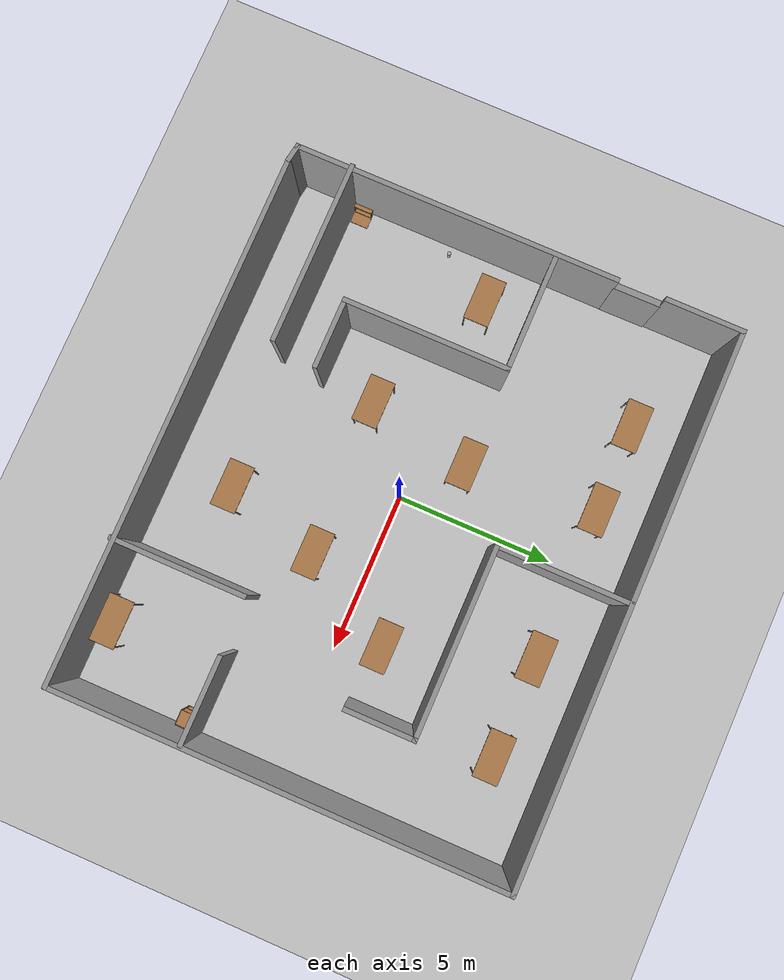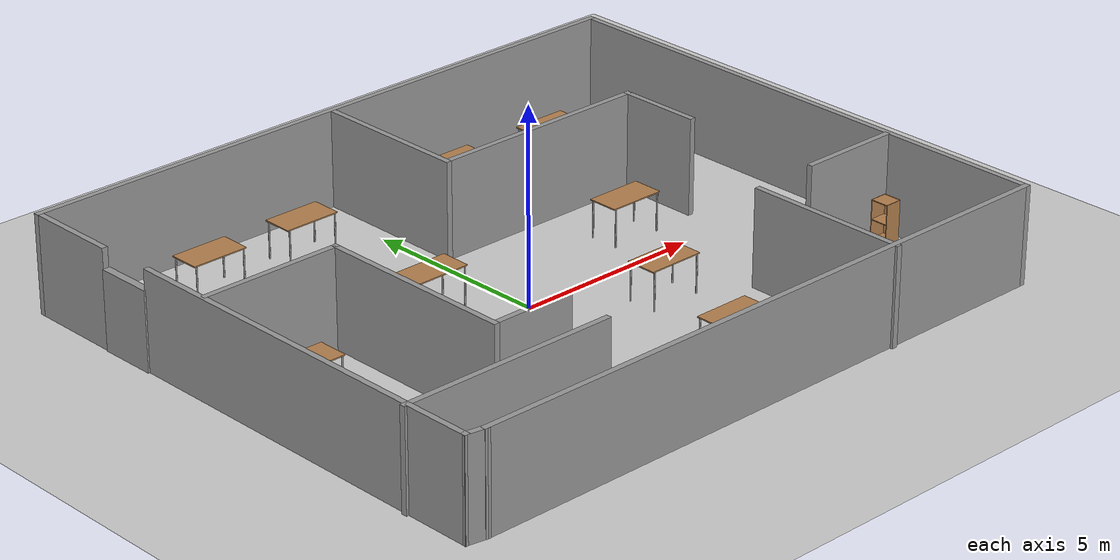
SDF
<sdf version="1.6">
 <world name="default">
  <light name="sun" type="directional">
   <pose>0 0 10 0 -0 0</pose>
   <diffuse>0.8 0.8 0.8 1</diffuse>
   <specular>0.2 0.2 0.2 1</specular>
   <attenuation>
    <range>1000</range>
    <constant>0.9</constant>
    <linear>0.01</linear>
    <quadratic>0.001</quadratic>
   </attenuation>
   <direction>-0.5 0.1 -0.9</direction>
  </light>
  <model name="ground_plane">
   <static>1</static>
   <link name="link">
    <collision name="collision">
     <geometry><plane><normal>0 0 1</normal><size>100 100</size></plane></geometry>
     <surface>
      <contact><collide_bitmask>65535</collide_bitmask></contact>
      <friction><ode><mu>100</mu><mu2>50</mu2></ode></friction>
     </surface>
    </collision>
    <visual name="visual">
     <cast_shadows>0</cast_shadows>
     <geometry><plane><normal>0 0 1</normal><size>100 100</size></plane></geometry>
     <material>
      <script><uri>file://media/materials/scripts/gazebo.material</uri><name>Gazebo/Grey</name></script>
     </material>
    </visual>
   </link>
  </model>
  <gravity>0 0 -9.8</gravity>
  <magnetic_field>6e-06 2.3e-05 -4.2e-05</magnetic_field>
  <atmosphere type="adiabatic"/>
  <physics name="default_physics" default="0" type="ode">
   <max_step_size>0.001</max_step_size>
   <real_time_factor>1</real_time_factor>
   <real_time_update_rate>1000</real_time_update_rate>
  </physics>
  <scene><ambient>0.4 0.4 0.4 1</ambient><background>0.7 0.7 0.7 1</background><shadows>1</shadows></scene>
  <spherical_coordinates>
   <surface_model>EARTH_WGS84</surface_model>
   <latitude_deg>0</latitude_deg>
   <longitude_deg>0</longitude_deg>
   <elevation>0</elevation>
   <heading_deg>0</heading_deg>
  </spherical_coordinates>
  <model name="my_office">
   <pose>0.443231 0.190933 0 0 -0 0</pose>
   <link name="Door_0">
    <collision name="Door_0_Collision">
     <geometry><box><size>1.46806 0.2 2</size></box></geometry>
     <pose>0 0 1 0 -0 0</pose>
    </collision>
    <visual name="Door_0_Visual">
     <pose>0 0 1 0 -0 0</pose>
     <geometry><box><size>1.46806 0.2 2</size></box></geometry>
     <material>
      <script><uri>file://media/materials/scripts/gazebo.material</uri><name>Gazebo/Grey</name></script>
     </material>
    </visual>
    <pose>-8.525 3.93257 0 0 0 -1.56325</pose>
   </link>
   <link name="Wall_10">
    <collision name="Wall_10_Collision">
     <geometry><box><size>10.25 0.15 2.5</size></box></geometry>
     <pose>0 0 1.25 0 -0 0</pose>
    </collision>
    <visual name="Wall_10_Visual">
     <pose>0 0 1.25 0 -0 0</pose>
     <geometry><box><size>10.25 0.15 2.5</size></box></geometry>
     <material>
      <script><uri>file://media/materials/scripts/gazebo.material</uri><name>Gazebo/Grey</name></script>
      <ambient>1 1 1 1</ambient>
     </material>
     <meta><layer>0</layer></meta>
    </visual>
    <pose>-8.50225 -1.88743 0 0 -0 1.5708</pose>
   </link>
   <link name="Wall_14">
    <collision name="Wall_14_Collision">
     <geometry><box><size>0.62569 0.15 2.5</size></box></geometry>
     <pose>0 0 1.25 0 -0 0</pose>
    </collision>
    <visual name="Wall_14_Visual">
     <pose>0 0 1.25 0 -0 0</pose>
     <geometry><box><size>0.62569 0.15 2.5</size></box></geometry>
     <material>
      <script><uri>file://media/materials/scripts/gazebo.material</uri><name>Gazebo/Grey</name></script>
      <ambient>1 1 1 1</ambient>
     </material>
     <meta><layer>0</layer></meta>
    </visual>
    <pose>-8.26774 -6.97711 0 0 -0 2.974</pose>
   </link>
   <link name="Wall_16">
    <collision name="Wall_16_Collision">
     <geometry><box><size>4.25 0.15 2.5</size></box></geometry>
     <pose>0 0 1.25 0 -0 0</pose>
    </collision>
    <visual name="Wall_16_Visual">
     <pose>0 0 1.25 0 -0 0</pose>
     <geometry><box><size>4.25 0.15 2.5</size></box></geometry>
     <material>
      <script><uri>file://media/materials/scripts/gazebo.material</uri><name>Gazebo/Grey</name></script>
      <ambient>1 1 1 1</ambient>
     </material>
     <meta><layer>0</layer></meta>
    </visual>
    <pose>4.08226 -5.03322 0 0 -0 1.5708</pose>
   </link>
   <link name="Wall_19">
    <collision name="Wall_19_Collision">
     <geometry><box><size>2.75 0.15 2.5</size></box></geometry>
     <pose>0 0 1.25 0 -0 0</pose>
    </collision>
    <visual name="Wall_19_Visual">
     <pose>0 0 1.25 0 -0 0</pose>
     <geometry><box><size>2.75 0.15 2.5</size></box></geometry>
     <material>
      <script><uri>file://media/materials/scripts/gazebo.material</uri><name>Gazebo/Grey</name></script>
      <ambient>1 1 1 1</ambient>
     </material>
     <meta><layer>0</layer></meta>
    </visual>
    <pose>7.20694 -2.90579 0 0 -0 3.14159</pose>
   </link>
   <link name="Wall_21">
    <collision name="Wall_21_Collision">
     <geometry><box><size>4.25 0.15 2.5</size></box></geometry>
     <pose>0 0 1.25 0 -0 0</pose>
    </collision>
    <visual name="Wall_21_Visual">
     <pose>0 0 1.25 0 -0 0</pose>
     <geometry><box><size>4.25 0.15 2.5</size></box></geometry>
     <material>
      <script><uri>file://media/materials/scripts/gazebo.material</uri><name>Gazebo/Grey</name></script>
      <ambient>1 1 1 1</ambient>
     </material>
     <meta><layer>0</layer></meta>
    </visual>
    <pose>-0.034669 5.03298 0 0 0 -1.5708</pose>
   </link>
   <link name="Wall_22">
    <collision name="Wall_22_Collision">
     <geometry><box><size>6 0.15 2.5</size></box></geometry>
     <pose>0 0 1.25 0 -0 0</pose>
    </collision>
    <visual name="Wall_22_Visual">
     <pose>0 0 1.25 0 -0 0</pose>
     <geometry><box><size>6 0.15 2.5</size></box></geometry>
     <material>
      <script><uri>file://media/materials/scripts/gazebo.material</uri><name>Gazebo/Grey</name></script>
      <ambient>1 1 1 1</ambient>
     </material>
     <meta><layer>0</layer></meta>
    </visual>
    <pose>2.89033 2.98298 0 0 -0 0</pose>
   </link>
   <link name="Wall_23">
    <collision name="Wall_23_Collision">
     <geometry><box><size>2.25 0.15 2.5</size></box></geometry>
     <pose>0 0 1.25 0 -0 0</pose>
    </collision>
    <visual name="Wall_23_Visual">
     <pose>0 0 1.25 0 -0 0</pose>
     <geometry><box><size>2.25 0.15 2.5</size></box></geometry>
     <material>
      <script><uri>file://media/materials/scripts/gazebo.material</uri><name>Gazebo/Grey</name></script>
      <ambient>1 1 1 1</ambient>
     </material>
     <meta><layer>0</layer></meta>
    </visual>
    <pose>5.81533 1.93298 0 0 0 -1.5708</pose>
   </link>
   <link name="Wall_25">
    <collision name="Wall_25_Collision">
     <geometry><box><size>3.75 0.15 2.5</size></box></geometry>
     <pose>0 0 1.25 0 -0 0</pose>
    </collision>
    <visual name="Wall_25_Visual">
     <pose>0 0 1.25 0 -0 0</pose>
     <geometry><box><size>3.75 0.15 2.5</size></box></geometry>
     <material>
      <script><uri>file://media/materials/scripts/gazebo.material</uri><name>Gazebo/Grey</name></script>
      <ambient>1 1 1 1</ambient>
     </material>
     <meta><layer>0</layer></meta>
    </visual>
    <pose>-6.6299 1.28845 0 0 -0 0</pose>
   </link>
   <link name="Wall_26">
    <collision name="Wall_26_Collision">
     <geometry><box><size>5.25 0.15 2.5</size></box></geometry>
     <pose>0 0 1.25 0 -0 0</pose>
    </collision>
    <visual name="Wall_26_Visual">
     <pose>0 0 1.25 0 -0 0</pose>
     <geometry><box><size>5.25 0.15 2.5</size></box></geometry>
     <material>
      <script><uri>file://media/materials/scripts/gazebo.material</uri><name>Gazebo/Grey</name></script>
      <ambient>1 1 1 1</ambient>
     </material>
     <meta><layer>0</layer></meta>
    </visual>
    <pose>-4.8299 -1.26155 0 0 0 -1.5708</pose>
   </link>
   <link name="Wall_27">
    <collision name="Wall_27_Collision">
     <geometry><box><size>2.25 0.15 2.5</size></box></geometry>
     <pose>0 0 1.25 0 -0 0</pose>
    </collision>
    <visual name="Wall_27_Visual">
     <pose>0 0 1.25 0 -0 0</pose>
     <geometry><box><size>2.25 0.15 2.5</size></box></geometry>
     <material>
      <script><uri>file://media/materials/scripts/gazebo.material</uri><name>Gazebo/Grey</name></script>
      <ambient>1 1 1 1</ambient>
     </material>
     <meta><layer>0</layer></meta>
    </visual>
    <pose>-3.7799 -3.81155 0 0 -0 0</pose>
   </link>
   <link name="Wall_3">
    <collision name="Wall_3_Collision">
     <geometry><box><size>16.75 0.15 2.5</size></box></geometry>
     <pose>0 0 1.25 0 -0 0</pose>
    </collision>
    <visual name="Wall_3_Visual">
     <pose>0 0 1.25 0 -0 0</pose>
     <geometry><box><size>16.75 0.15 2.5</size></box></geometry>
     <material>
      <script><uri>file://media/materials/scripts/gazebo.material</uri><name>Gazebo/Grey</name></script>
      <ambient>1 1 1 1</ambient>
     </material>
     <meta><layer>0</layer></meta>
    </visual>
    <pose>0.266777 -7.01678 0 0 -0 0</pose>
   </link>
   <link name="Wall_31">
    <collision name="Wall_31_Collision">
     <geometry><box><size>5.75 0.15 2.5</size></box></geometry>
     <pose>0 0 1.25 0 -0 0</pose>
    </collision>
    <visual name="Wall_31_Visual">
     <pose>0 0 1.25 0 -0 0</pose>
     <geometry><box><size>5.75 0.15 2.5</size></box></geometry>
     <material>
      <script><uri>file://media/materials/scripts/gazebo.material</uri><name>Gazebo/Grey</name></script>
      <ambient>1 1 1 1</ambient>
     </material>
     <meta><layer>0</layer></meta>
    </visual>
    <pose>-5.76678 -5.2361 0 0 -0 0</pose>
   </link>
   <link name="Wall_4">
    <collision name="Wall_4_Collision">
     <geometry><box><size>14.25 0.15 2.5</size></box></geometry>
     <pose>0 0 1.25 0 -0 0</pose>
    </collision>
    <visual name="Wall_4_Visual">
     <pose>0 0 1.25 0 -0 0</pose>
     <geometry><box><size>14.25 0.15 2.5</size></box></geometry>
     <material>
      <script><uri>file://media/materials/scripts/gazebo.material</uri><name>Gazebo/Grey</name></script>
      <ambient>1 1 1 1</ambient>
     </material>
     <meta><layer>0</layer></meta>
    </visual>
    <pose>8.56678 0.033215 0 0 -0 1.5708</pose>
   </link>
   <link name="Wall_5">
    <collision name="Wall_5_Collision">
     <geometry><box><size>17.25 0.15 2.5</size></box></geometry>
     <pose>0 0 1.25 0 -0 0</pose>
    </collision>
    <visual name="Wall_5_Visual">
     <pose>0 0 1.25 0 -0 0</pose>
     <geometry><box><size>17.25 0.15 2.5</size></box></geometry>
     <material>
      <script><uri>file://media/materials/scripts/gazebo.material</uri><name>Gazebo/Grey</name></script>
      <ambient>1 1 1 1</ambient>
     </material>
     <meta><layer>0</layer></meta>
    </visual>
    <pose>0.016777 7.08322 0 0 -0 3.14159</pose>
   </link>
   <link name="Wall_6">
    <collision name="Wall_6_Collision">
     <geometry><box><size>2.5 0.15 2.5</size></box></geometry>
     <pose>0 0 1.25 0 -0 0</pose>
    </collision>
    <visual name="Wall_6_Visual">
     <pose>0 0 1.25 0 -0 0</pose>
     <geometry><box><size>2.5 0.15 2.5</size></box></geometry>
     <material>
      <script><uri>file://media/materials/scripts/gazebo.material</uri><name>Gazebo/Grey</name></script>
      <ambient>1 1 1 1</ambient>
     </material>
     <meta><layer>0</layer></meta>
    </visual>
    <pose>-8.53322 5.90822 0 0 0 -1.5708</pose>
   </link>
   <static>1</static>
  </model>
  <model name="cabinet">
   <static>1</static>
   <link name="cabinet_bottom_plate">
    <inertial>
     <pose>0 0 -1 0 -0 0</pose>
     <inertia><ixx>2.05</ixx><ixy>0</ixy><ixz>0</ixz><iyy>2.05</iyy><iyz>0</iyz><izz>2.05</izz></inertia>
     <mass>25</mass>
    </inertial>
    <collision name="cabinet_bottom_plate_geom">
     <pose>0 0 0.01 0 -0 0</pose>
     <geometry><box><size>0.45 0.45 0.02</size></box></geometry>
    </collision>
    <visual name="cabinet_bottom_plate_geom_visual">
     <pose>0 0 0.01 0 -0 0</pose>
     <geometry><box><size>0.45 0.45 0.02</size></box></geometry>
     <material>
      <script><uri>file://media/materials/scripts/gazebo.material</uri><name>Gazebo/Wood</name></script>
     </material>
    </visual>
    <collision name="cabinet_bottom_plate_geom_cabinet_back_plate">
     <pose>0.235 0 0.51 0 -0 0</pose>
     <geometry><box><size>0.02 0.45 1.02</size></box></geometry>
    </collision>
    <visual name="cabinet_bottom_plate_geom_cabinet_back_plate_visual">
     <pose>0.235 0 0.51 0 -0 0</pose>
     <geometry><box><size>0.02 0.45 1.02</size></box></geometry>
     <material>
      <script><uri>file://media/materials/scripts/gazebo.material</uri><name>Gazebo/Wood</name></script>
     </material>
    </visual>
    <collision name="cabinet_bottom_plate_geom_cabinet_left_plate">
     <pose>0 0.235 0.51 0 -0 0</pose>
     <geometry><box><size>0.45 0.02 1.02</size></box></geometry>
    </collision>
    <visual name="cabinet_bottom_plate_geom_cabinet_left_plate_visual">
     <pose>0 0.235 0.51 0 -0 0</pose>
     <geometry><box><size>0.45 0.02 1.02</size></box></geometry>
     <material>
      <script><uri>file://media/materials/scripts/gazebo.material</uri><name>Gazebo/Wood</name></script>
     </material>
    </visual>
    <collision name="cabinet_bottom_plate_geom_cabinet_middle_plate">
     <pose>0 0 0.51 0 -0 0</pose>
     <geometry><box><size>0.45 0.45 0.02</size></box></geometry>
    </collision>
    <visual name="cabinet_bottom_plate_geom_cabinet_middle_plate_visual">
     <pose>0 0 0.51 0 -0 0</pose>
     <geometry><box><size>0.45 0.45 0.02</size></box></geometry>
     <material>
      <script><uri>file://media/materials/scripts/gazebo.material</uri><name>Gazebo/Wood</name></script>
     </material>
    </visual>
    <collision name="cabinet_bottom_plate_geom_cabinet_right_plate">
     <pose>0 -0.235 0.51 0 -0 0</pose>
     <geometry><box><size>0.45 0.02 1.02</size></box></geometry>
    </collision>
    <visual name="cabinet_bottom_plate_geom_cabinet_right_plate_visual">
     <pose>0 -0.235 0.51 0 -0 0</pose>
     <geometry><box><size>0.45 0.02 1.02</size></box></geometry>
     <material>
      <script><uri>file://media/materials/scripts/gazebo.material</uri><name>Gazebo/Wood</name></script>
     </material>
    </visual>
    <collision name="cabinet_bottom_plate_geom_cabinet_top_plate">
     <pose>0 0 1.01 0 -0 0</pose>
     <geometry><box><size>0.45 0.45 0.02</size></box></geometry>
    </collision>
    <visual name="cabinet_bottom_plate_geom_cabinet_top_plate_visual">
     <pose>0 0 1.01 0 -0 0</pose>
     <geometry><box><size>0.45 0.45 0.02</size></box></geometry>
     <material>
      <script><uri>file://media/materials/scripts/gazebo.material</uri><name>Gazebo/Wood</name></script>
     </material>
    </visual>
   </link>
   <pose>8.58414 -3.09068 0 0 -0 0</pose>
  </model>
  <model name="table">
   <static>1</static>
   <link name="link">
    <collision name="surface">
     <pose>0 0 1 0 -0 0</pose>
     <geometry><box><size>1.5 0.8 0.03</size></box></geometry>
     <surface><friction><ode><mu>0.6</mu><mu2>0.6</mu2></ode></friction></surface>
    </collision>
    <visual name="visual1">
     <pose>0 0 1 0 -0 0</pose>
     <geometry><box><size>1.5 0.8 0.03</size></box></geometry>
     <material>
      <script><uri>file://media/materials/scripts/gazebo.material</uri><name>Gazebo/Wood</name></script>
     </material>
    </visual>
    <collision name="front_left_leg">
     <pose>0.68 0.38 0.5 0 -0 0</pose>
     <geometry><cylinder><radius>0.02</radius><length>1</length></cylinder></geometry>
    </collision>
    <visual name="front_left_leg">
     <pose>0.68 0.38 0.5 0 -0 0</pose>
     <geometry><cylinder><radius>0.02</radius><length>1</length></cylinder></geometry>
     <material>
      <script><uri>file://media/materials/scripts/gazebo.material</uri><name>Gazebo/Grey</name></script>
     </material>
    </visual>
    <collision name="front_right_leg">
     <pose>0.68 -0.38 0.5 0 -0 0</pose>
     <geometry><cylinder><radius>0.02</radius><length>1</length></cylinder></geometry>
    </collision>
    <visual name="front_right_leg">
     <pose>0.68 -0.38 0.5 0 -0 0</pose>
     <geometry><cylinder><radius>0.02</radius><length>1</length></cylinder></geometry>
     <material>
      <script><uri>file://media/materials/scripts/gazebo.material</uri><name>Gazebo/Grey</name></script>
     </material>
    </visual>
    <collision name="back_right_leg">
     <pose>-0.68 -0.38 0.5 0 -0 0</pose>
     <geometry><cylinder><radius>0.02</radius><length>1</length></cylinder></geometry>
    </collision>
    <visual name="back_right_leg">
     <pose>-0.68 -0.38 0.5 0 -0 0</pose>
     <geometry><cylinder><radius>0.02</radius><length>1</length></cylinder></geometry>
     <material>
      <script><uri>file://media/materials/scripts/gazebo.material</uri><name>Gazebo/Grey</name></script>
     </material>
    </visual>
    <collision name="back_left_leg">
     <pose>-0.68 0.38 0.5 0 -0 0</pose>
     <geometry><cylinder><radius>0.02</radius><length>1</length></cylinder></geometry>
    </collision>
    <visual name="back_left_leg">
     <pose>-0.68 0.38 0.5 0 -0 0</pose>
     <geometry><cylinder><radius>0.02</radius><length>1</length></cylinder></geometry>
     <material>
      <script><uri>file://media/materials/scripts/gazebo.material</uri><name>Gazebo/Grey</name></script>
     </material>
    </visual>
   </link>
   <pose>6.83722 -6.28916 0 0 -0 0</pose>
  </model>
  <model name="table_0">
   <static>1</static>
   <link name="link">
    <collision name="surface">
     <pose>0 0 1 0 -0 0</pose>
     <geometry><box><size>1.5 0.8 0.03</size></box></geometry>
     <surface><friction><ode><mu>0.6</mu><mu2>0.6</mu2></ode></friction></surface>
    </collision>
    <visual name="visual1">
     <pose>0 0 1 0 -0 0</pose>
     <geometry><box><size>1.5 0.8 0.03</size></box></geometry>
     <material>
      <script><uri>file://media/materials/scripts/gazebo.material</uri><name>Gazebo/Wood</name></script>
     </material>
    </visual>
    <collision name="front_left_leg">
     <pose>0.68 0.38 0.5 0 -0 0</pose>
     <geometry><cylinder><radius>0.02</radius><length>1</length></cylinder></geometry>
    </collision>
    <visual name="front_left_leg">
     <pose>0.68 0.38 0.5 0 -0 0</pose>
     <geometry><cylinder><radius>0.02</radius><length>1</length></cylinder></geometry>
     <material>
      <script><uri>file://media/materials/scripts/gazebo.material</uri><name>Gazebo/Grey</name></script>
     </material>
    </visual>
    <collision name="front_right_leg">
     <pose>0.68 -0.38 0.5 0 -0 0</pose>
     <geometry><cylinder><radius>0.02</radius><length>1</length></cylinder></geometry>
    </collision>
    <visual name="front_right_leg">
     <pose>0.68 -0.38 0.5 0 -0 0</pose>
     <geometry><cylinder><radius>0.02</radius><length>1</length></cylinder></geometry>
     <material>
      <script><uri>file://media/materials/scripts/gazebo.material</uri><name>Gazebo/Grey</name></script>
     </material>
    </visual>
    <collision name="back_right_leg">
     <pose>-0.68 -0.38 0.5 0 -0 0</pose>
     <geometry><cylinder><radius>0.02</radius><length>1</length></cylinder></geometry>
    </collision>
    <visual name="back_right_leg">
     <pose>-0.68 -0.38 0.5 0 -0 0</pose>
     <geometry><cylinder><radius>0.02</radius><length>1</length></cylinder></geometry>
     <material>
      <script><uri>file://media/materials/scripts/gazebo.material</uri><name>Gazebo/Grey</name></script>
     </material>
    </visual>
    <collision name="back_left_leg">
     <pose>-0.68 0.38 0.5 0 -0 0</pose>
     <geometry><cylinder><radius>0.02</radius><length>1</length></cylinder></geometry>
    </collision>
    <visual name="back_left_leg">
     <pose>-0.68 0.38 0.5 0 -0 0</pose>
     <geometry><cylinder><radius>0.02</radius><length>1</length></cylinder></geometry>
     <material>
      <script><uri>file://media/materials/scripts/gazebo.material</uri><name>Gazebo/Grey</name></script>
     </material>
    </visual>
   </link>
   <pose>2.87174 5.62538 0 0 -0 0</pose>
  </model>
  <model name="table_1">
   <static>1</static>
   <link name="link">
    <collision name="surface">
     <pose>0 0 1 0 -0 0</pose>
     <geometry><box><size>1.5 0.8 0.03</size></box></geometry>
     <surface><friction><ode><mu>0.6</mu><mu2>0.6</mu2></ode></friction></surface>
    </collision>
    <visual name="visual1">
     <pose>0 0 1 0 -0 0</pose>
     <geometry><box><size>1.5 0.8 0.03</size></box></geometry>
     <material>
      <script><uri>file://media/materials/scripts/gazebo.material</uri><name>Gazebo/Wood</name></script>
     </material>
    </visual>
    <collision name="front_left_leg">
     <pose>0.68 0.38 0.5 0 -0 0</pose>
     <geometry><cylinder><radius>0.02</radius><length>1</length></cylinder></geometry>
    </collision>
    <visual name="front_left_leg">
     <pose>0.68 0.38 0.5 0 -0 0</pose>
     <geometry><cylinder><radius>0.02</radius><length>1</length></cylinder></geometry>
     <material>
      <script><uri>file://media/materials/scripts/gazebo.material</uri><name>Gazebo/Grey</name></script>
     </material>
    </visual>
    <collision name="front_right_leg">
     <pose>0.68 -0.38 0.5 0 -0 0</pose>
     <geometry><cylinder><radius>0.02</radius><length>1</length></cylinder></geometry>
    </collision>
    <visual name="front_right_leg">
     <pose>0.68 -0.38 0.5 0 -0 0</pose>
     <geometry><cylinder><radius>0.02</radius><length>1</length></cylinder></geometry>
     <material>
      <script><uri>file://media/materials/scripts/gazebo.material</uri><name>Gazebo/Grey</name></script>
     </material>
    </visual>
    <collision name="back_right_leg">
     <pose>-0.68 -0.38 0.5 0 -0 0</pose>
     <geometry><cylinder><radius>0.02</radius><length>1</length></cylinder></geometry>
    </collision>
    <visual name="back_right_leg">
     <pose>-0.68 -0.38 0.5 0 -0 0</pose>
     <geometry><cylinder><radius>0.02</radius><length>1</length></cylinder></geometry>
     <material>
      <script><uri>file://media/materials/scripts/gazebo.material</uri><name>Gazebo/Grey</name></script>
     </material>
    </visual>
    <collision name="back_left_leg">
     <pose>-0.68 0.38 0.5 0 -0 0</pose>
     <geometry><cylinder><radius>0.02</radius><length>1</length></cylinder></geometry>
    </collision>
    <visual name="back_left_leg">
     <pose>-0.68 0.38 0.5 0 -0 0</pose>
     <geometry><cylinder><radius>0.02</radius><length>1</length></cylinder></geometry>
     <material>
      <script><uri>file://media/materials/scripts/gazebo.material</uri><name>Gazebo/Grey</name></script>
     </material>
    </visual>
   </link>
   <pose>5.97469 5.5953 0 0 -0 0</pose>
  </model>
  <model name="wooden_case">
   <link name="base">
    <pose>0 0 0.024 0 -0 0</pose>
    <inertial>
     <pose>-0.022184 0 0.171592 0 -0 0</pose>
     <mass>3.96264</mass>
     <inertia>
      <ixx>0.213536</ixx>
      <ixy>0</ixy>
      <ixz>0.000779377</ixz>
      <iyy>0.0708943</iyy>
      <iyz>0</iyz>
      <izz>0.154604</izz>
     </inertia>
    </inertial>
    <collision name="collision_back">
     <pose>-0.053975 0 0.1778 0 -0 0</pose>
     <geometry><box><size>0.01905 0.5461 0.3175</size></box></geometry>
     <surface>
      <contact>
       <poissons_ratio>0.347</poissons_ratio>
       <elastic_modulus>8.8e+09</elastic_modulus>
       <ode><kp>100000</kp><kd>100</kd><max_vel>100</max_vel><min_depth>0.001</min_depth></ode>
      </contact>
      <friction>
       <torsional>
        <coefficient>1</coefficient>
        <use_patch_radius>0</use_patch_radius>
        <surface_radius>0.01</surface_radius>
       </torsional>
      </friction>
     </surface>
    </collision>
    <visual name="visual_back">
     <pose>-0.053975 0 0.1778 0 -0 0</pose>
     <geometry><box><size>0.01905 0.5461 0.3175</size></box></geometry>
     <material>
      <script><uri>file://media/materials/scripts/gazebo.material</uri><name>Gazebo/Wood</name></script>
     </material>
    </visual>
    <collision name="collision_bottom">
     <pose>0 0 0.009525 0 -0 0</pose>
     <geometry><box><size>0.127 0.5842 0.01905</size></box></geometry>
     <surface>
      <contact>
       <poissons_ratio>0.347</poissons_ratio>
       <elastic_modulus>8.8e+09</elastic_modulus>
       <ode><kp>100000</kp><kd>100</kd><max_vel>100</max_vel><min_depth>0.001</min_depth></ode>
      </contact>
      <friction>
       <torsional>
        <coefficient>1</coefficient>
        <use_patch_radius>0</use_patch_radius>
        <surface_radius>0.01</surface_radius>
       </torsional>
      </friction>
     </surface>
    </collision>
    <visual name="visual_bottom">
     <pose>0 0 0.009525 0 -0 0</pose>
     <geometry><box><size>0.127 0.5842 0.01905</size></box></geometry>
     <material>
      <script><uri>file://media/materials/scripts/gazebo.material</uri><name>Gazebo/Wood</name></script>
     </material>
    </visual>
    <collision name="collision_top">
     <pose>0 0 0.346075 0 -0 0</pose>
     <geometry><box><size>0.127 0.5842 0.01905</size></box></geometry>
     <surface>
      <contact>
       <poissons_ratio>0.347</poissons_ratio>
       <elastic_modulus>8.8e+09</elastic_modulus>
       <ode><kp>100000</kp><kd>100</kd><max_vel>100</max_vel><min_depth>0.001</min_depth></ode>
      </contact>
      <friction>
       <torsional>
        <coefficient>1</coefficient>
        <use_patch_radius>0</use_patch_radius>
        <surface_radius>0.01</surface_radius>
       </torsional>
      </friction>
     </surface>
    </collision>
    <visual name="visual_top">
     <pose>0 0 0.346075 0 -0 0</pose>
     <geometry><box><size>0.127 0.5842 0.01905</size></box></geometry>
     <material>
      <script><uri>file://media/materials/scripts/gazebo.material</uri><name>Gazebo/Wood</name></script>
     </material>
    </visual>
    <collision name="collision_left">
     <pose>0 -0.282575 0.1778 0 -0 0</pose>
     <geometry><box><size>0.127 0.01905 0.3175</size></box></geometry>
     <surface>
      <contact>
       <poissons_ratio>0.347</poissons_ratio>
       <elastic_modulus>8.8e+09</elastic_modulus>
       <ode><kp>100000</kp><kd>100</kd><max_vel>100</max_vel><min_depth>0.001</min_depth></ode>
      </contact>
      <friction>
       <torsional>
        <coefficient>1</coefficient>
        <use_patch_radius>0</use_patch_radius>
        <surface_radius>0.01</surface_radius>
       </torsional>
      </friction>
     </surface>
    </collision>
    <visual name="visual_left">
     <pose>0 -0.282575 0.1778 0 -0 0</pose>
     <geometry><box><size>0.127 0.01905 0.3175</size></box></geometry>
     <material>
      <script><uri>file://media/materials/scripts/gazebo.material</uri><name>Gazebo/Wood</name></script>
     </material>
    </visual>
    <collision name="collision_right">
     <pose>0 0.282575 0.1778 0 -0 0</pose>
     <geometry><box><size>0.127 0.01905 0.3175</size></box></geometry>
     <surface>
      <contact>
       <poissons_ratio>0.347</poissons_ratio>
       <elastic_modulus>8.8e+09</elastic_modulus>
       <ode><kp>100000</kp><kd>100</kd><max_vel>100</max_vel><min_depth>0.001</min_depth></ode>
      </contact>
      <friction>
       <torsional>
        <coefficient>1</coefficient>
        <use_patch_radius>0</use_patch_radius>
        <surface_radius>0.01</surface_radius>
       </torsional>
      </friction>
     </surface>
    </collision>
    <visual name="visual_right">
     <pose>0 0.282575 0.1778 0 -0 0</pose>
     <geometry><box><size>0.127 0.01905 0.3175</size></box></geometry>
     <material>
      <script><uri>file://media/materials/scripts/gazebo.material</uri><name>Gazebo/Wood</name></script>
     </material>
    </visual>
    <collision name="collision_block_left">
     <pose>0.0095 -0.2151 -0.012 0 -0 0</pose>
     <geometry><box><size>0.108 0.05 0.024</size></box></geometry>
     <surface>
      <contact>
       <poissons_ratio>0.347</poissons_ratio>
       <elastic_modulus>8.8e+09</elastic_modulus>
       <ode><kp>100000</kp><kd>100</kd><max_vel>100</max_vel><min_depth>0.001</min_depth></ode>
      </contact>
      <friction>
       <torsional>
        <coefficient>1</coefficient>
        <use_patch_radius>0</use_patch_radius>
        <surface_radius>0.01</surface_radius>
       </torsional>
      </friction>
     </surface>
    </collision>
    <visual name="visual_block_left">
     <pose>0.0095 -0.2151 -0.012 0 -0 0</pose>
     <geometry><box><size>0.108 0.05 0.024</size></box></geometry>
     <material>
      <script><uri>file://media/materials/scripts/gazebo.material</uri><name>Gazebo/Wood</name></script>
     </material>
    </visual>
    <collision name="collision_block_right">
     <pose>0.0095 0.2151 -0.012 0 -0 0</pose>
     <geometry><box><size>0.108 0.05 0.024</size></box></geometry>
     <surface>
      <contact>
       <poissons_ratio>0.347</poissons_ratio>
       <elastic_modulus>8.8e+09</elastic_modulus>
       <ode><kp>100000</kp><kd>100</kd><max_vel>100</max_vel><min_depth>0.001</min_depth></ode>
      </contact>
      <friction>
       <torsional>
        <coefficient>1</coefficient>
        <use_patch_radius>0</use_patch_radius>
        <surface_radius>0.01</surface_radius>
       </torsional>
      </friction>
     </surface>
    </collision>
    <visual name="visual_block_right">
     <pose>0.0095 0.2151 -0.012 0 -0 0</pose>
     <geometry><box><size>0.108 0.05 0.024</size></box></geometry>
     <material>
      <script><uri>file://media/materials/scripts/gazebo.material</uri><name>Gazebo/Wood</name></script>
     </material>
    </visual>
   </link>
   <link name="lid">
    <pose>0.243775 0 0.009525 0 -0 0</pose>
    <inertial>
     <mass>1.97874</mass>
     <inertia>
      <ixx>0.0563367</ixx>
      <ixy>0</ixy>
      <ixz>0</ixz>
      <iyy>0.020911</iyy>
      <iyz>0</iyz>
      <izz>0.0771281</izz>
     </inertia>
    </inertial>
    <collision name="collision">
     <geometry><box><size>0.3556 0.5842 0.01905</size></box></geometry>
     <surface>
      <contact>
       <poissons_ratio>0.347</poissons_ratio>
       <elastic_modulus>8.8e+09</elastic_modulus>
       <ode><kp>100000</kp><kd>100</kd><max_vel>100</max_vel><min_depth>0.001</min_depth></ode>
      </contact>
      <friction>
       <torsional>
        <coefficient>1</coefficient>
        <use_patch_radius>0</use_patch_radius>
        <surface_radius>0.01</surface_radius>
       </torsional>
      </friction>
     </surface>
    </collision>
    <visual name="visual">
     <geometry><box><size>0.3556 0.5842 0.01905</size></box></geometry>
     <material>
      <script><uri>file://media/materials/scripts/gazebo.material</uri><name>Gazebo/Wood</name></script>
     </material>
    </visual>
    <visual name="tee_nut_1">
     <pose>0.122 -0.216 0 0 -0 0</pose>
     <geometry><cylinder><radius>0.00635</radius><length>0.0192405</length></cylinder></geometry>
     <material>
      <script><uri>file://media/materials/scripts/gazebo.material</uri><name>Gazebo/Grey</name></script>
     </material>
    </visual>
    <visual name="tee_nut_2">
     <pose>0.122 -0.088 0 0 -0 0</pose>
     <geometry><cylinder><radius>0.00635</radius><length>0.0192405</length></cylinder></geometry>
     <material>
      <script><uri>file://media/materials/scripts/gazebo.material</uri><name>Gazebo/Grey</name></script>
     </material>
    </visual>
    <visual name="tee_nut_3">
     <pose>0.122 0.088 0 0 -0 0</pose>
     <geometry><cylinder><radius>0.00635</radius><length>0.0192405</length></cylinder></geometry>
     <material>
      <script><uri>file://media/materials/scripts/gazebo.material</uri><name>Gazebo/Grey</name></script>
     </material>
    </visual>
    <visual name="tee_nut_4">
     <pose>0.122 0.216 0 0 -0 0</pose>
     <geometry><cylinder><radius>0.00635</radius><length>0.0192405</length></cylinder></geometry>
     <material>
      <script><uri>file://media/materials/scripts/gazebo.material</uri><name>Gazebo/Grey</name></script>
     </material>
    </visual>
   </link>
   <joint name="lid_hinge" type="revolute">
    <pose>-0.1778 0 0.01905 0 -0 0</pose>
    <parent>base</parent>
    <child>lid</child>
    <axis>
     <xyz>0 1 0</xyz>
     <limit><upper>0.523599</upper><lower>-1.5708</lower></limit>
     <use_parent_model_frame>0</use_parent_model_frame>
     <dynamics><spring_reference>0</spring_reference><spring_stiffness>0</spring_stiffness></dynamics>
    </axis>
   </joint>
   <pose>-7.89015 -4.66066 -0.001057 0 -0.000429 0</pose>
  </model>
  <model name="table_2">
   <static>1</static>
   <link name="link">
    <collision name="surface">
     <pose>0 0 1 0 -0 0</pose>
     <geometry><box><size>1.5 0.8 0.03</size></box></geometry>
     <surface><friction><ode><mu>0.6</mu><mu2>0.6</mu2></ode></friction></surface>
    </collision>
    <visual name="visual1">
     <pose>0 0 1 0 -0 0</pose>
     <geometry><box><size>1.5 0.8 0.03</size></box></geometry>
     <material>
      <script><uri>file://media/materials/scripts/gazebo.material</uri><name>Gazebo/Wood</name></script>
     </material>
    </visual>
    <collision name="front_left_leg">
     <pose>0.68 0.38 0.5 0 -0 0</pose>
     <geometry><cylinder><radius>0.02</radius><length>1</length></cylinder></geometry>
    </collision>
    <visual name="front_left_leg">
     <pose>0.68 0.38 0.5 0 -0 0</pose>
     <geometry><cylinder><radius>0.02</radius><length>1</length></cylinder></geometry>
     <material>
      <script><uri>file://media/materials/scripts/gazebo.material</uri><name>Gazebo/Grey</name></script>
     </material>
    </visual>
    <collision name="front_right_leg">
     <pose>0.68 -0.38 0.5 0 -0 0</pose>
     <geometry><cylinder><radius>0.02</radius><length>1</length></cylinder></geometry>
    </collision>
    <visual name="front_right_leg">
     <pose>0.68 -0.38 0.5 0 -0 0</pose>
     <geometry><cylinder><radius>0.02</radius><length>1</length></cylinder></geometry>
     <material>
      <script><uri>file://media/materials/scripts/gazebo.material</uri><name>Gazebo/Grey</name></script>
     </material>
    </visual>
    <collision name="back_right_leg">
     <pose>-0.68 -0.38 0.5 0 -0 0</pose>
     <geometry><cylinder><radius>0.02</radius><length>1</length></cylinder></geometry>
    </collision>
    <visual name="back_right_leg">
     <pose>-0.68 -0.38 0.5 0 -0 0</pose>
     <geometry><cylinder><radius>0.02</radius><length>1</length></cylinder></geometry>
     <material>
      <script><uri>file://media/materials/scripts/gazebo.material</uri><name>Gazebo/Grey</name></script>
     </material>
    </visual>
    <collision name="back_left_leg">
     <pose>-0.68 0.38 0.5 0 -0 0</pose>
     <geometry><cylinder><radius>0.02</radius><length>1</length></cylinder></geometry>
    </collision>
    <visual name="back_left_leg">
     <pose>-0.68 0.38 0.5 0 -0 0</pose>
     <geometry><cylinder><radius>0.02</radius><length>1</length></cylinder></geometry>
     <material>
      <script><uri>file://media/materials/scripts/gazebo.material</uri><name>Gazebo/Grey</name></script>
     </material>
    </visual>
   </link>
   <pose>-6.48276 0.022329 0 0 -0 0</pose>
  </model>
  <model name="beer">
   <link name="link">
    <pose>0 0 0.115 0 -0 0</pose>
    <inertial>
     <mass>0.39</mass>
     <inertia><ixx>0.00058</ixx><ixy>0</ixy><ixz>0</ixz><iyy>0.00058</iyy><iyz>0</iyz><izz>0.00019</izz></inertia>
    </inertial>
    <collision name="collision">
     <geometry><cylinder><radius>0.055</radius><length>0.23</length></cylinder></geometry>
    </collision>
    <visual name="visual">
     <geometry><cylinder><radius>0.055</radius><length>0.23</length></cylinder></geometry>
     <material>
      <script>
       <uri>model://beer/materials/scripts</uri>
       <uri>model://beer/materials/textures</uri>
       <name>Beer/Diffuse</name>
      </script>
     </material>
    </visual>
   </link>
   <pose>-7.6812 -1.63248 -7e-06 0 0 -1e-05</pose>
  </model>
  <model name="table_3">
   <static>1</static>
   <link name="link">
    <collision name="surface">
     <pose>0 0 1 0 -0 0</pose>
     <geometry><box><size>1.5 0.8 0.03</size></box></geometry>
     <surface><friction><ode><mu>0.6</mu><mu2>0.6</mu2></ode></friction></surface>
    </collision>
    <visual name="visual1">
     <pose>0 0 1 0 -0 0</pose>
     <geometry><box><size>1.5 0.8 0.03</size></box></geometry>
     <material>
      <script><uri>file://media/materials/scripts/gazebo.material</uri><name>Gazebo/Wood</name></script>
     </material>
    </visual>
    <collision name="front_left_leg">
     <pose>0.68 0.38 0.5 0 -0 0</pose>
     <geometry><cylinder><radius>0.02</radius><length>1</length></cylinder></geometry>
    </collision>
    <visual name="front_left_leg">
     <pose>0.68 0.38 0.5 0 -0 0</pose>
     <geometry><cylinder><radius>0.02</radius><length>1</length></cylinder></geometry>
     <material>
      <script><uri>file://media/materials/scripts/gazebo.material</uri><name>Gazebo/Grey</name></script>
     </material>
    </visual>
    <collision name="front_right_leg">
     <pose>0.68 -0.38 0.5 0 -0 0</pose>
     <geometry><cylinder><radius>0.02</radius><length>1</length></cylinder></geometry>
    </collision>
    <visual name="front_right_leg">
     <pose>0.68 -0.38 0.5 0 -0 0</pose>
     <geometry><cylinder><radius>0.02</radius><length>1</length></cylinder></geometry>
     <material>
      <script><uri>file://media/materials/scripts/gazebo.material</uri><name>Gazebo/Grey</name></script>
     </material>
    </visual>
    <collision name="back_right_leg">
     <pose>-0.68 -0.38 0.5 0 -0 0</pose>
     <geometry><cylinder><radius>0.02</radius><length>1</length></cylinder></geometry>
    </collision>
    <visual name="back_right_leg">
     <pose>-0.68 -0.38 0.5 0 -0 0</pose>
     <geometry><cylinder><radius>0.02</radius><length>1</length></cylinder></geometry>
     <material>
      <script><uri>file://media/materials/scripts/gazebo.material</uri><name>Gazebo/Grey</name></script>
     </material>
    </visual>
    <collision name="back_left_leg">
     <pose>-0.68 0.38 0.5 0 -0 0</pose>
     <geometry><cylinder><radius>0.02</radius><length>1</length></cylinder></geometry>
    </collision>
    <visual name="back_left_leg">
     <pose>-0.68 0.38 0.5 0 -0 0</pose>
     <geometry><cylinder><radius>0.02</radius><length>1</length></cylinder></geometry>
     <material>
      <script><uri>file://media/materials/scripts/gazebo.material</uri><name>Gazebo/Grey</name></script>
     </material>
    </visual>
   </link>
   <pose>-1.92675 5.64055 0 0 -0 0</pose>
  </model>
  <model name="table_4">
   <static>1</static>
   <link name="link">
    <collision name="surface">
     <pose>0 0 1 0 -0 0</pose>
     <geometry><box><size>1.5 0.8 0.03</size></box></geometry>
     <surface><friction><ode><mu>0.6</mu><mu2>0.6</mu2></ode></friction></surface>
    </collision>
    <visual name="visual1">
     <pose>0 0 1 0 -0 0</pose>
     <geometry><box><size>1.5 0.8 0.03</size></box></geometry>
     <material>
      <script><uri>file://media/materials/scripts/gazebo.material</uri><name>Gazebo/Wood</name></script>
     </material>
    </visual>
    <collision name="front_left_leg">
     <pose>0.68 0.38 0.5 0 -0 0</pose>
     <geometry><cylinder><radius>0.02</radius><length>1</length></cylinder></geometry>
    </collision>
    <visual name="front_left_leg">
     <pose>0.68 0.38 0.5 0 -0 0</pose>
     <geometry><cylinder><radius>0.02</radius><length>1</length></cylinder></geometry>
     <material>
      <script><uri>file://media/materials/scripts/gazebo.material</uri><name>Gazebo/Grey</name></script>
     </material>
    </visual>
    <collision name="front_right_leg">
     <pose>0.68 -0.38 0.5 0 -0 0</pose>
     <geometry><cylinder><radius>0.02</radius><length>1</length></cylinder></geometry>
    </collision>
    <visual name="front_right_leg">
     <pose>0.68 -0.38 0.5 0 -0 0</pose>
     <geometry><cylinder><radius>0.02</radius><length>1</length></cylinder></geometry>
     <material>
      <script><uri>file://media/materials/scripts/gazebo.material</uri><name>Gazebo/Grey</name></script>
     </material>
    </visual>
    <collision name="back_right_leg">
     <pose>-0.68 -0.38 0.5 0 -0 0</pose>
     <geometry><cylinder><radius>0.02</radius><length>1</length></cylinder></geometry>
    </collision>
    <visual name="back_right_leg">
     <pose>-0.68 -0.38 0.5 0 -0 0</pose>
     <geometry><cylinder><radius>0.02</radius><length>1</length></cylinder></geometry>
     <material>
      <script><uri>file://media/materials/scripts/gazebo.material</uri><name>Gazebo/Grey</name></script>
     </material>
    </visual>
    <collision name="back_left_leg">
     <pose>-0.68 0.38 0.5 0 -0 0</pose>
     <geometry><cylinder><radius>0.02</radius><length>1</length></cylinder></geometry>
    </collision>
    <visual name="back_left_leg">
     <pose>-0.68 0.38 0.5 0 -0 0</pose>
     <geometry><cylinder><radius>0.02</radius><length>1</length></cylinder></geometry>
     <material>
      <script><uri>file://media/materials/scripts/gazebo.material</uri><name>Gazebo/Grey</name></script>
     </material>
    </visual>
   </link>
   <pose>-4.66978 5.60725 0 0 -0 0</pose>
  </model>
  <model name="table_5">
   <static>1</static>
   <link name="link">
    <collision name="surface">
     <pose>0 0 1 0 -0 0</pose>
     <geometry><box><size>1.5 0.8 0.03</size></box></geometry>
     <surface><friction><ode><mu>0.6</mu><mu2>0.6</mu2></ode></friction></surface>
    </collision>
    <visual name="visual1">
     <pose>0 0 1 0 -0 0</pose>
     <geometry><box><size>1.5 0.8 0.03</size></box></geometry>
     <material>
      <script><uri>file://media/materials/scripts/gazebo.material</uri><name>Gazebo/Wood</name></script>
     </material>
    </visual>
    <collision name="front_left_leg">
     <pose>0.68 0.38 0.5 0 -0 0</pose>
     <geometry><cylinder><radius>0.02</radius><length>1</length></cylinder></geometry>
    </collision>
    <visual name="front_left_leg">
     <pose>0.68 0.38 0.5 0 -0 0</pose>
     <geometry><cylinder><radius>0.02</radius><length>1</length></cylinder></geometry>
     <material>
      <script><uri>file://media/materials/scripts/gazebo.material</uri><name>Gazebo/Grey</name></script>
     </material>
    </visual>
    <collision name="front_right_leg">
     <pose>0.68 -0.38 0.5 0 -0 0</pose>
     <geometry><cylinder><radius>0.02</radius><length>1</length></cylinder></geometry>
    </collision>
    <visual name="front_right_leg">
     <pose>0.68 -0.38 0.5 0 -0 0</pose>
     <geometry><cylinder><radius>0.02</radius><length>1</length></cylinder></geometry>
     <material>
      <script><uri>file://media/materials/scripts/gazebo.material</uri><name>Gazebo/Grey</name></script>
     </material>
    </visual>
    <collision name="back_right_leg">
     <pose>-0.68 -0.38 0.5 0 -0 0</pose>
     <geometry><cylinder><radius>0.02</radius><length>1</length></cylinder></geometry>
    </collision>
    <visual name="back_right_leg">
     <pose>-0.68 -0.38 0.5 0 -0 0</pose>
     <geometry><cylinder><radius>0.02</radius><length>1</length></cylinder></geometry>
     <material>
      <script><uri>file://media/materials/scripts/gazebo.material</uri><name>Gazebo/Grey</name></script>
     </material>
    </visual>
    <collision name="back_left_leg">
     <pose>-0.68 0.38 0.5 0 -0 0</pose>
     <geometry><cylinder><radius>0.02</radius><length>1</length></cylinder></geometry>
    </collision>
    <visual name="back_left_leg">
     <pose>-0.68 0.38 0.5 0 -0 0</pose>
     <geometry><cylinder><radius>0.02</radius><length>1</length></cylinder></geometry>
     <material>
      <script><uri>file://media/materials/scripts/gazebo.material</uri><name>Gazebo/Grey</name></script>
     </material>
    </visual>
   </link>
   <pose>4.34201 1.30359 0 0 -0 0</pose>
  </model>
  <model name="table_6">
   <static>1</static>
   <link name="link">
    <collision name="surface">
     <pose>0 0 1 0 -0 0</pose>
     <geometry><box><size>1.5 0.8 0.03</size></box></geometry>
     <surface><friction><ode><mu>0.6</mu><mu2>0.6</mu2></ode></friction></surface>
    </collision>
    <visual name="visual1">
     <pose>0 0 1 0 -0 0</pose>
     <geometry><box><size>1.5 0.8 0.03</size></box></geometry>
     <material>
      <script><uri>file://media/materials/scripts/gazebo.material</uri><name>Gazebo/Wood</name></script>
     </material>
    </visual>
    <collision name="front_left_leg">
     <pose>0.68 0.38 0.5 0 -0 0</pose>
     <geometry><cylinder><radius>0.02</radius><length>1</length></cylinder></geometry>
    </collision>
    <visual name="front_left_leg">
     <pose>0.68 0.38 0.5 0 -0 0</pose>
     <geometry><cylinder><radius>0.02</radius><length>1</length></cylinder></geometry>
     <material>
      <script><uri>file://media/materials/scripts/gazebo.material</uri><name>Gazebo/Grey</name></script>
     </material>
    </visual>
    <collision name="front_right_leg">
     <pose>0.68 -0.38 0.5 0 -0 0</pose>
     <geometry><cylinder><radius>0.02</radius><length>1</length></cylinder></geometry>
    </collision>
    <visual name="front_right_leg">
     <pose>0.68 -0.38 0.5 0 -0 0</pose>
     <geometry><cylinder><radius>0.02</radius><length>1</length></cylinder></geometry>
     <material>
      <script><uri>file://media/materials/scripts/gazebo.material</uri><name>Gazebo/Grey</name></script>
     </material>
    </visual>
    <collision name="back_right_leg">
     <pose>-0.68 -0.38 0.5 0 -0 0</pose>
     <geometry><cylinder><radius>0.02</radius><length>1</length></cylinder></geometry>
    </collision>
    <visual name="back_right_leg">
     <pose>-0.68 -0.38 0.5 0 -0 0</pose>
     <geometry><cylinder><radius>0.02</radius><length>1</length></cylinder></geometry>
     <material>
      <script><uri>file://media/materials/scripts/gazebo.material</uri><name>Gazebo/Grey</name></script>
     </material>
    </visual>
    <collision name="back_left_leg">
     <pose>-0.68 0.38 0.5 0 -0 0</pose>
     <geometry><cylinder><radius>0.02</radius><length>1</length></cylinder></geometry>
    </collision>
    <visual name="back_left_leg">
     <pose>-0.68 0.38 0.5 0 -0 0</pose>
     <geometry><cylinder><radius>0.02</radius><length>1</length></cylinder></geometry>
     <material>
      <script><uri>file://media/materials/scripts/gazebo.material</uri><name>Gazebo/Grey</name></script>
     </material>
    </visual>
   </link>
   <pose>-2.26108 -1.83796 0 0 -0 0</pose>
  </model>
  <model name="table_7">
   <static>1</static>
   <link name="link">
    <collision name="surface">
     <pose>0 0 1 0 -0 0</pose>
     <geometry><box><size>1.5 0.8 0.03</size></box></geometry>
     <surface><friction><ode><mu>0.6</mu><mu2>0.6</mu2></ode></friction></surface>
    </collision>
    <visual name="visual1">
     <pose>0 0 1 0 -0 0</pose>
     <geometry><box><size>1.5 0.8 0.03</size></box></geometry>
     <material>
      <script><uri>file://media/materials/scripts/gazebo.material</uri><name>Gazebo/Wood</name></script>
     </material>
    </visual>
    <collision name="front_left_leg">
     <pose>0.68 0.38 0.5 0 -0 0</pose>
     <geometry><cylinder><radius>0.02</radius><length>1</length></cylinder></geometry>
    </collision>
    <visual name="front_left_leg">
     <pose>0.68 0.38 0.5 0 -0 0</pose>
     <geometry><cylinder><radius>0.02</radius><length>1</length></cylinder></geometry>
     <material>
      <script><uri>file://media/materials/scripts/gazebo.material</uri><name>Gazebo/Grey</name></script>
     </material>
    </visual>
    <collision name="front_right_leg">
     <pose>0.68 -0.38 0.5 0 -0 0</pose>
     <geometry><cylinder><radius>0.02</radius><length>1</length></cylinder></geometry>
    </collision>
    <visual name="front_right_leg">
     <pose>0.68 -0.38 0.5 0 -0 0</pose>
     <geometry><cylinder><radius>0.02</radius><length>1</length></cylinder></geometry>
     <material>
      <script><uri>file://media/materials/scripts/gazebo.material</uri><name>Gazebo/Grey</name></script>
     </material>
    </visual>
    <collision name="back_right_leg">
     <pose>-0.68 -0.38 0.5 0 -0 0</pose>
     <geometry><cylinder><radius>0.02</radius><length>1</length></cylinder></geometry>
    </collision>
    <visual name="back_right_leg">
     <pose>-0.68 -0.38 0.5 0 -0 0</pose>
     <geometry><cylinder><radius>0.02</radius><length>1</length></cylinder></geometry>
     <material>
      <script><uri>file://media/materials/scripts/gazebo.material</uri><name>Gazebo/Grey</name></script>
     </material>
    </visual>
    <collision name="back_left_leg">
     <pose>-0.68 0.38 0.5 0 -0 0</pose>
     <geometry><cylinder><radius>0.02</radius><length>1</length></cylinder></geometry>
    </collision>
    <visual name="back_left_leg">
     <pose>-0.68 0.38 0.5 0 -0 0</pose>
     <geometry><cylinder><radius>0.02</radius><length>1</length></cylinder></geometry>
     <material>
      <script><uri>file://media/materials/scripts/gazebo.material</uri><name>Gazebo/Grey</name></script>
     </material>
    </visual>
   </link>
   <pose>2.62897 -1.67237 0 0 -0 0</pose>
  </model>
  <model name="table_8">
   <static>1</static>
   <link name="link">
    <collision name="surface">
     <pose>0 0 1 0 -0 0</pose>
     <geometry><box><size>1.5 0.8 0.03</size></box></geometry>
     <surface><friction><ode><mu>0.6</mu><mu2>0.6</mu2></ode></friction></surface>
    </collision>
    <visual name="visual1">
     <pose>0 0 1 0 -0 0</pose>
     <geometry><box><size>1.5 0.8 0.03</size></box></geometry>
     <material>
      <script><uri>file://media/materials/scripts/gazebo.material</uri><name>Gazebo/Wood</name></script>
     </material>
    </visual>
    <collision name="front_left_leg">
     <pose>0.68 0.38 0.5 0 -0 0</pose>
     <geometry><cylinder><radius>0.02</radius><length>1</length></cylinder></geometry>
    </collision>
    <visual name="front_left_leg">
     <pose>0.68 0.38 0.5 0 -0 0</pose>
     <geometry><cylinder><radius>0.02</radius><length>1</length></cylinder></geometry>
     <material>
      <script><uri>file://media/materials/scripts/gazebo.material</uri><name>Gazebo/Grey</name></script>
     </material>
    </visual>
    <collision name="front_right_leg">
     <pose>0.68 -0.38 0.5 0 -0 0</pose>
     <geometry><cylinder><radius>0.02</radius><length>1</length></cylinder></geometry>
    </collision>
    <visual name="front_right_leg">
     <pose>0.68 -0.38 0.5 0 -0 0</pose>
     <geometry><cylinder><radius>0.02</radius><length>1</length></cylinder></geometry>
     <material>
      <script><uri>file://media/materials/scripts/gazebo.material</uri><name>Gazebo/Grey</name></script>
     </material>
    </visual>
    <collision name="back_right_leg">
     <pose>-0.68 -0.38 0.5 0 -0 0</pose>
     <geometry><cylinder><radius>0.02</radius><length>1</length></cylinder></geometry>
    </collision>
    <visual name="back_right_leg">
     <pose>-0.68 -0.38 0.5 0 -0 0</pose>
     <geometry><cylinder><radius>0.02</radius><length>1</length></cylinder></geometry>
     <material>
      <script><uri>file://media/materials/scripts/gazebo.material</uri><name>Gazebo/Grey</name></script>
     </material>
    </visual>
    <collision name="back_left_leg">
     <pose>-0.68 0.38 0.5 0 -0 0</pose>
     <geometry><cylinder><radius>0.02</radius><length>1</length></cylinder></geometry>
    </collision>
    <visual name="back_left_leg">
     <pose>-0.68 0.38 0.5 0 -0 0</pose>
     <geometry><cylinder><radius>0.02</radius><length>1</length></cylinder></geometry>
     <material>
      <script><uri>file://media/materials/scripts/gazebo.material</uri><name>Gazebo/Grey</name></script>
     </material>
    </visual>
   </link>
   <pose>-1.62514 1.47848 0 0 -0 0</pose>
  </model>
  <model name="table_9">
   <static>1</static>
   <link name="link">
    <collision name="surface">
     <pose>0 0 1 0 -0 0</pose>
     <geometry><box><size>1.5 0.8 0.03</size></box></geometry>
     <surface><friction><ode><mu>0.6</mu><mu2>0.6</mu2></ode></friction></surface>
    </collision>
    <visual name="visual1">
     <pose>0 0 1 0 -0 0</pose>
     <geometry><box><size>1.5 0.8 0.03</size></box></geometry>
     <material>
      <script><uri>file://media/materials/scripts/gazebo.material</uri><name>Gazebo/Wood</name></script>
     </material>
    </visual>
    <collision name="front_left_leg">
     <pose>0.68 0.38 0.5 0 -0 0</pose>
     <geometry><cylinder><radius>0.02</radius><length>1</length></cylinder></geometry>
    </collision>
    <visual name="front_left_leg">
     <pose>0.68 0.38 0.5 0 -0 0</pose>
     <geometry><cylinder><radius>0.02</radius><length>1</length></cylinder></geometry>
     <material>
      <script><uri>file://media/materials/scripts/gazebo.material</uri><name>Gazebo/Grey</name></script>
     </material>
    </visual>
    <collision name="front_right_leg">
     <pose>0.68 -0.38 0.5 0 -0 0</pose>
     <geometry><cylinder><radius>0.02</radius><length>1</length></cylinder></geometry>
    </collision>
    <visual name="front_right_leg">
     <pose>0.68 -0.38 0.5 0 -0 0</pose>
     <geometry><cylinder><radius>0.02</radius><length>1</length></cylinder></geometry>
     <material>
      <script><uri>file://media/materials/scripts/gazebo.material</uri><name>Gazebo/Grey</name></script>
     </material>
    </visual>
    <collision name="back_right_leg">
     <pose>-0.68 -0.38 0.5 0 -0 0</pose>
     <geometry><cylinder><radius>0.02</radius><length>1</length></cylinder></geometry>
    </collision>
    <visual name="back_right_leg">
     <pose>-0.68 -0.38 0.5 0 -0 0</pose>
     <geometry><cylinder><radius>0.02</radius><length>1</length></cylinder></geometry>
     <material>
      <script><uri>file://media/materials/scripts/gazebo.material</uri><name>Gazebo/Grey</name></script>
     </material>
    </visual>
    <collision name="back_left_leg">
     <pose>-0.68 0.38 0.5 0 -0 0</pose>
     <geometry><cylinder><radius>0.02</radius><length>1</length></cylinder></geometry>
    </collision>
    <visual name="back_left_leg">
     <pose>-0.68 0.38 0.5 0 -0 0</pose>
     <geometry><cylinder><radius>0.02</radius><length>1</length></cylinder></geometry>
     <material>
      <script><uri>file://media/materials/scripts/gazebo.material</uri><name>Gazebo/Grey</name></script>
     </material>
    </visual>
   </link>
   <pose>1.76622 -4.68155 0 0 -0 0</pose>
  </model>
 </world>
</sdf>
